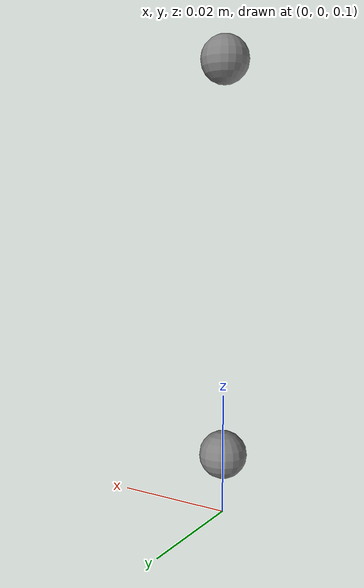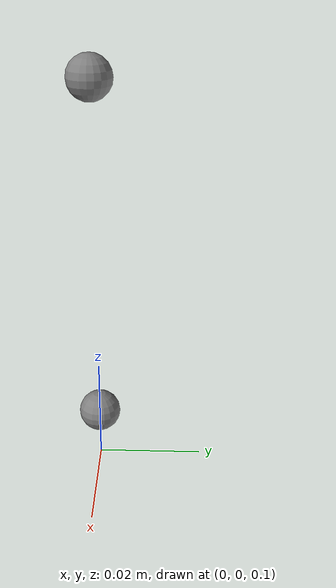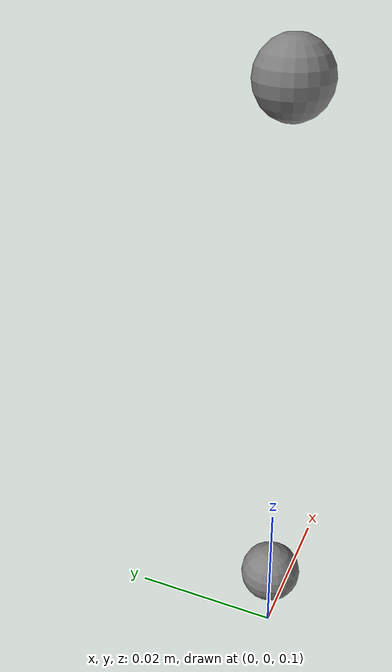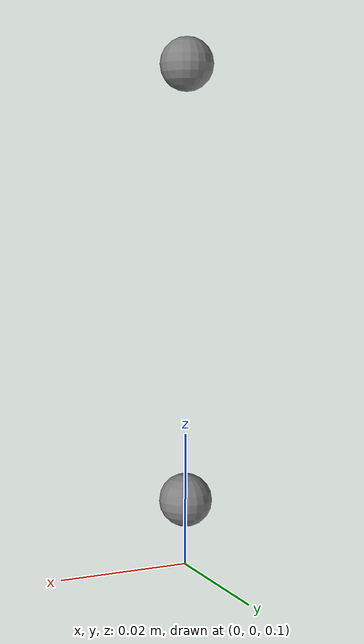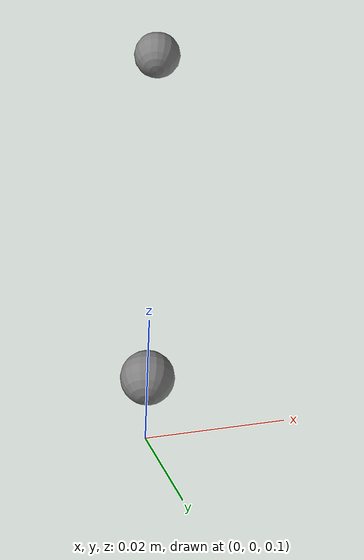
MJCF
<mujoco>
  <option gravity="2.0 0 -9.81" timestep="0.001"/>
  <worldbody>
    <body name="upper" pos="0 0 0.2">
      <joint name="j" type="hinge" axis="0 1 0"/>
      <geom type="sphere" pos="0 0 -0.025" size="0.004" mass="0.3"/>
      <body name="lower" pos="0 0 -0.05">
        <joint type="hinge" axis="0 1 0"/>
        <geom type="sphere" pos="0 0 -0.04" size="0.004" mass="0.4"/>
      </body>
    </body>
  </worldbody>
  <actuator><motor joint="j" gear="1"/></actuator>
</mujoco>
